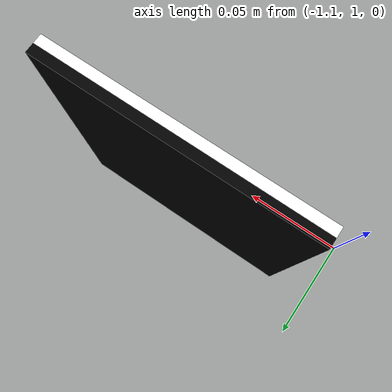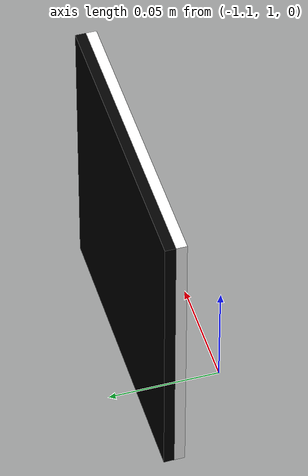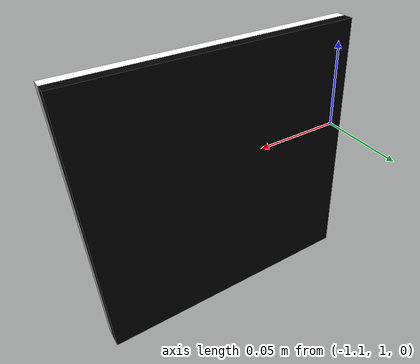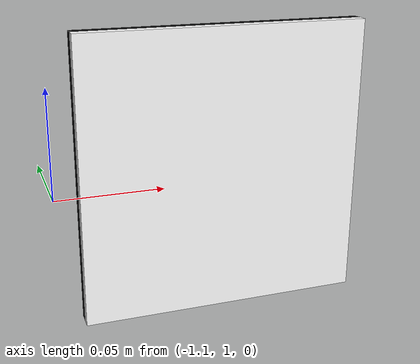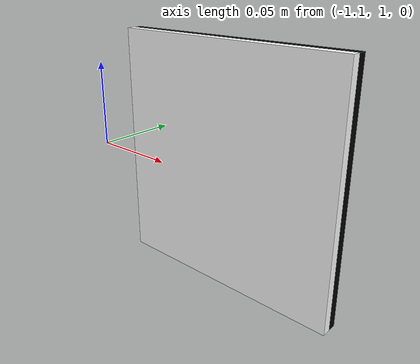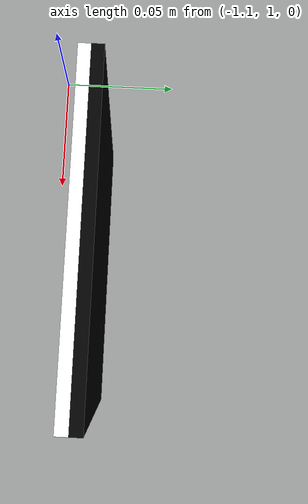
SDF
<sdf version="1.6">
 <world name="default">
  <gravity>0 0 -9.8</gravity>
  <magnetic_field>6e-06 2.3e-05 -4.2e-05</magnetic_field>
  <atmosphere type="adiabatic"/>
  <physics name="default_physics" default="0" type="ode">
   <max_step_size>0.001</max_step_size>
   <real_time_factor>1</real_time_factor>
   <real_time_update_rate>1000</real_time_update_rate>
  </physics>
  <scene><ambient>0.4 0.4 0.4 1</ambient><background>0.7 0.7 0.7 1</background><shadows>1</shadows></scene>
  <audio><device>default</device></audio>
  <spherical_coordinates>
   <surface_model>EARTH_WGS84</surface_model>
   <latitude_deg>0</latitude_deg>
   <longitude_deg>0</longitude_deg>
   <elevation>0</elevation>
   <heading_deg>0</heading_deg>
  </spherical_coordinates>
  <model name="Aruco_tag0">
   <link name="robot_link">
    <inertial>
     <mass>1</mass>
     <inertia><ixx>1</ixx><ixy>0</ixy><ixz>0</ixz><iyy>1</iyy><iyz>0</iyz><izz>1</izz></inertia>
    </inertial>
    <visual name="front_visual">
     <pose>0 0 0.0025 0 -0 0</pose>
     <geometry><box><size>0.14 0.14 0.005</size></box></geometry>
     <material>
      <script>
       <uri>model://Aruco_tag0/materials/scripts/</uri>
       <uri>model://Aruco_tag0/materials/textures/</uri>
       <name>aruco_tag_0</name>
      </script>
      <shader type="vertex"><normal_map>__default__</normal_map></shader>
      <ambient>1 1 1 1</ambient>
      <diffuse>1 1 1 1</diffuse>
      <specular>0 0 0 1</specular>
      <emissive>0 0 0 1</emissive>
     </material>
    </visual>
    <visual name="rear_visual">
     <pose>0 0 -0.0025 0 -0 0</pose>
     <geometry><box><size>0.14 0.14 0.005</size></box></geometry>
     <material>
      <shader type="vertex"><normal_map>__default__</normal_map></shader>
      <script><name>ModelPreview_1::robot_link::rear_visual_MATERIAL_</name><uri>__default__</uri></script>
      <ambient>0 0 0 1</ambient>
      <diffuse>0 0 0 1</diffuse>
      <specular>0 0 0 1</specular>
      <emissive>0 0 0 1</emissive>
     </material>
    </visual>
   </link>
   <static>1</static>
   <pose>-1.01645 1.01577 0 1.57 -0 0</pose>
  </model>
 </world>
</sdf>
